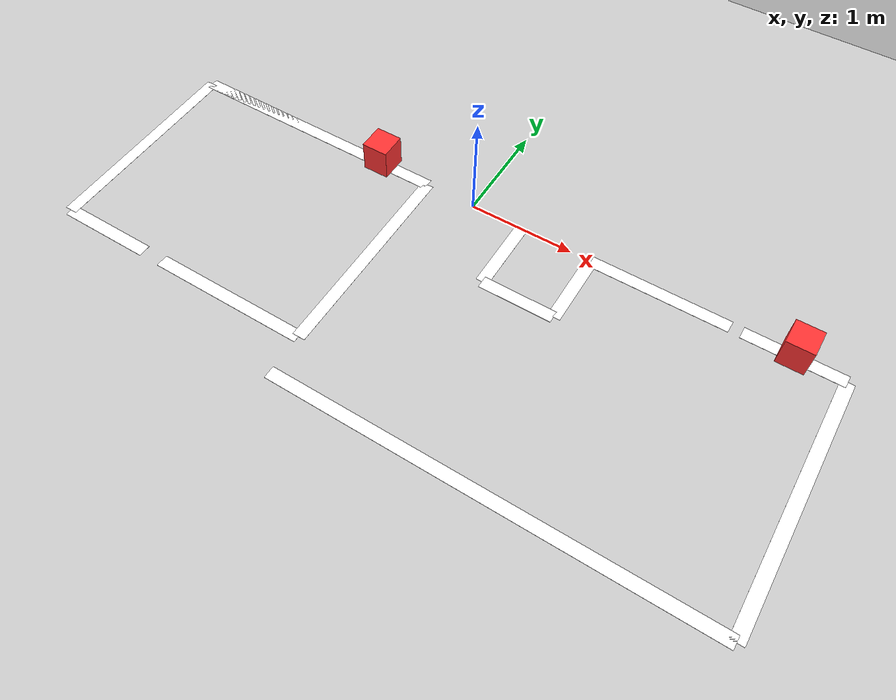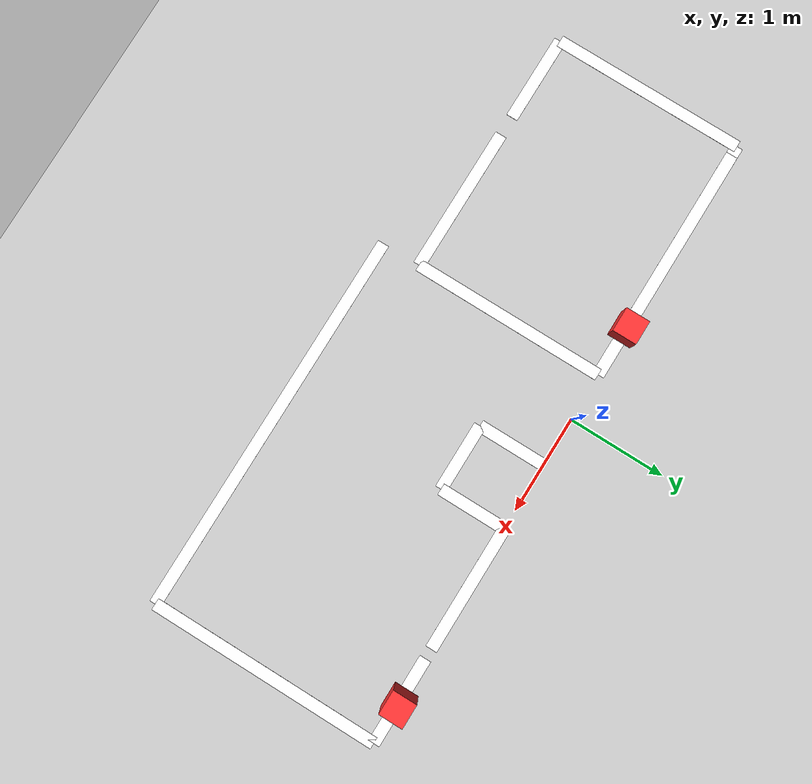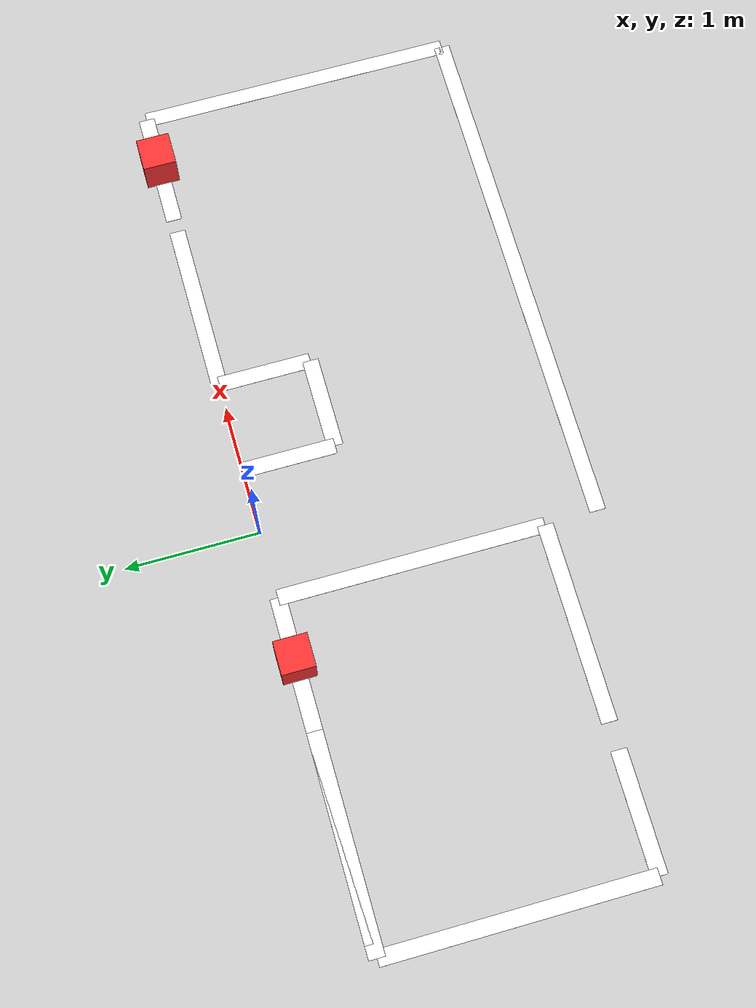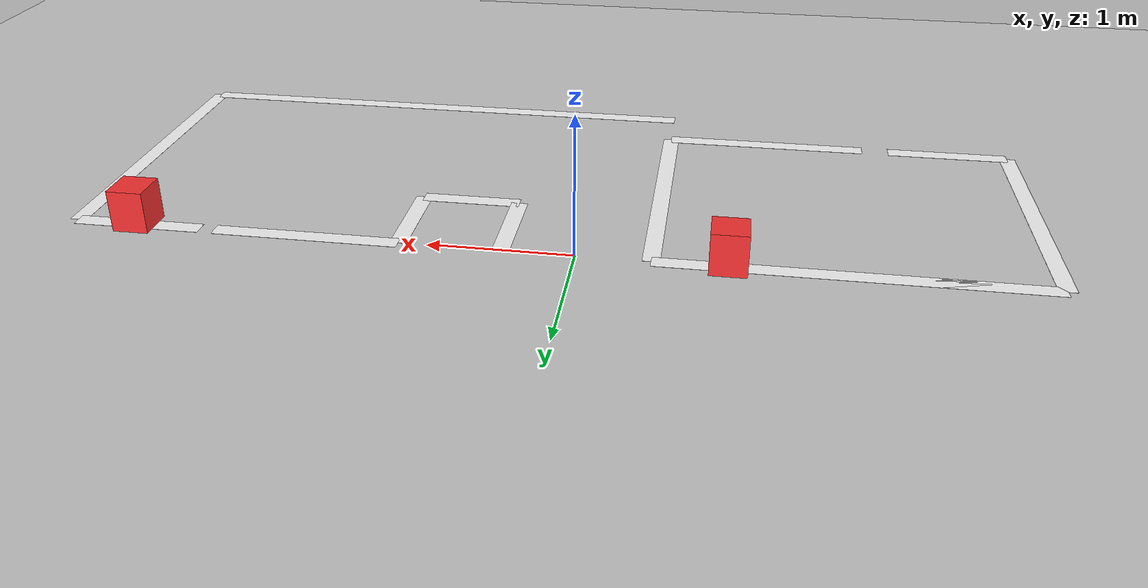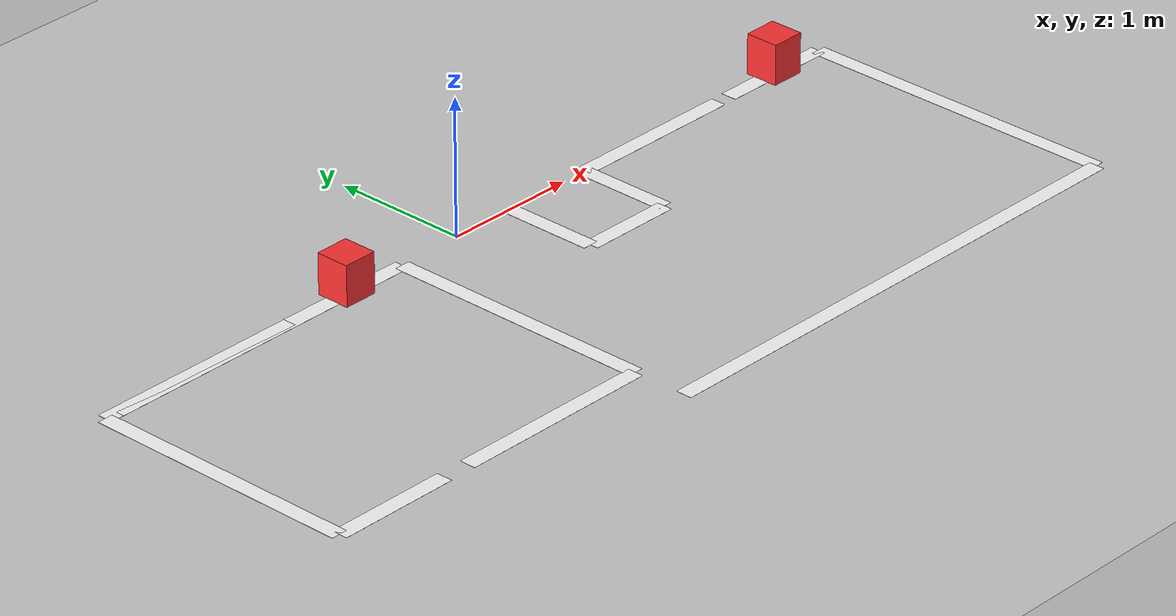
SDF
<?xml version="1.0"?>
<sdf version="1.6">
  <world name="complex_world">

    <include><uri>model://sun</uri></include>
    <include><uri>model://ground_plane</uri></include>
    <physics name="default" type="ode">
      <max_step_size>0.001</max_step_size>
      <real_time_factor>1</real_time_factor>
    </physics>

    <!-- SEGMENT 1: Start straight -->
    <model name="seg1"><static>true</static><pose>-1.75 0.0 0.001 0 0 0</pose>
      <link name="link">
        <visual name="v"><geometry><box><size>2.5 0.12 0.001</size></box></geometry>
          <material><ambient>1 1 1 1</ambient><diffuse>1 1 1 1</diffuse></material></visual>
        <collision name="c"><geometry><box><size>2.5 0.12 0.001</size></box></geometry></collision>
      </link></model>

    <!-- SEGMENT 2: Turn down at x=-0.5 -->
    <model name="seg2"><static>true</static><pose>-0.5 -1.0 0.001 0 0 1.5708</pose>
      <link name="link">
        <visual name="v"><geometry><box><size>2.0 0.12 0.001</size></box></geometry>
          <material><ambient>1 1 1 1</ambient><diffuse>1 1 1 1</diffuse></material></visual>
        <collision name="c"><geometry><box><size>2.0 0.12 0.001</size></box></geometry></collision>
      </link></model>

    <!-- SEGMENT 3a: Straight left, before gap 1 -->
    <model name="seg3a"><static>true</static><pose>-1.25 -2.0 0.001 0 0 0</pose>
      <link name="link">
        <visual name="v"><geometry><box><size>1.5 0.12 0.001</size></box></geometry>
          <material><ambient>1 1 1 1</ambient><diffuse>1 1 1 1</diffuse></material></visual>
        <collision name="c"><geometry><box><size>1.5 0.12 0.001</size></box></geometry></collision>
      </link></model>

    <!-- GAP 1: 0.3m gap from x=-2.0 to x=-2.3 -->

    <!-- SEGMENT 3b: After gap 1 -->
    <model name="seg3b"><static>true</static><pose>-2.65 -2.0 0.001 0 0 0</pose>
      <link name="link">
        <visual name="v"><geometry><box><size>0.9 0.12 0.001</size></box></geometry>
          <material><ambient>1 1 1 1</ambient><diffuse>1 1 1 1</diffuse></material></visual>
        <collision name="c"><geometry><box><size>0.9 0.12 0.001</size></box></geometry></collision>
      </link></model>

    <!-- SEGMENT 4: Turn up at x=-3.1 -->
    <model name="seg4"><static>true</static><pose>-3.1 -1.0 0.001 0 0 1.5708</pose>
      <link name="link">
        <visual name="v"><geometry><box><size>2.0 0.12 0.001</size></box></geometry>
          <material><ambient>1 1 1 1</ambient><diffuse>1 1 1 1</diffuse></material></visual>
        <collision name="c"><geometry><box><size>2.0 0.12 0.001</size></box></geometry></collision>
      </link></model>

    <!-- SEGMENT 5: Straight right back to centre -->
    <model name="seg5"><static>true</static><pose>-2.3 0.0 0.001 0 0 0</pose>
      <link name="link">
        <visual name="v"><geometry><box><size>1.6 0.12 0.001</size></box></geometry>
          <material><ambient>1 1 1 1</ambient><diffuse>1 1 1 1</diffuse></material></visual>
        <collision name="c"><geometry><box><size>1.6 0.12 0.001</size></box></geometry></collision>
      </link></model>

    <!-- SEGMENT 6: S-curve down -->
    <model name="seg6a"><static>true</static><pose>0.5 -0.35 0.001 0 0 1.5708</pose>
      <link name="link">
        <visual name="v"><geometry><box><size>0.7 0.12 0.001</size></box></geometry>
          <material><ambient>1 1 1 1</ambient><diffuse>1 1 1 1</diffuse></material></visual>
        <collision name="c"><geometry><box><size>0.7 0.12 0.001</size></box></geometry></collision>
      </link></model>

    <model name="seg6b"><static>true</static><pose>0.85 -0.7 0.001 0 0 0</pose>
      <link name="link">
        <visual name="v"><geometry><box><size>0.7 0.12 0.001</size></box></geometry>
          <material><ambient>1 1 1 1</ambient><diffuse>1 1 1 1</diffuse></material></visual>
        <collision name="c"><geometry><box><size>0.7 0.12 0.001</size></box></geometry></collision>
      </link></model>

    <model name="seg6c"><static>true</static><pose>1.2 -0.35 0.001 0 0 1.5708</pose>
      <link name="link">
        <visual name="v"><geometry><box><size>0.7 0.12 0.001</size></box></geometry>
          <material><ambient>1 1 1 1</ambient><diffuse>1 1 1 1</diffuse></material></visual>
        <collision name="c"><geometry><box><size>0.7 0.12 0.001</size></box></geometry></collision>
      </link></model>

    <!-- SEGMENT 7a: Straight right after S -->
    <model name="seg7a"><static>true</static><pose>1.85 0.0 0.001 0 0 0</pose>
      <link name="link">
        <visual name="v"><geometry><box><size>1.3 0.12 0.001</size></box></geometry>
          <material><ambient>1 1 1 1</ambient><diffuse>1 1 1 1</diffuse></material></visual>
        <collision name="c"><geometry><box><size>1.3 0.12 0.001</size></box></geometry></collision>
      </link></model>

    <!-- GAP 2: 0.3m gap from x=2.5 to x=2.8 -->

    <!-- SEGMENT 7b: After gap 2 -->
    <model name="seg7b"><static>true</static><pose>3.05 0.0 0.001 0 0 0</pose>
      <link name="link">
        <visual name="v"><geometry><box><size>0.9 0.12 0.001</size></box></geometry>
          <material><ambient>1 1 1 1</ambient><diffuse>1 1 1 1</diffuse></material></visual>
        <collision name="c"><geometry><box><size>0.9 0.12 0.001</size></box></geometry></collision>
      </link></model>

    <!-- SEGMENT 8: Turn down at x=3.5 -->
    <model name="seg8"><static>true</static><pose>3.5 -1.2 0.001 0 0 1.5708</pose>
      <link name="link">
        <visual name="v"><geometry><box><size>2.4 0.12 0.001</size></box></geometry>
          <material><ambient>1 1 1 1</ambient><diffuse>1 1 1 1</diffuse></material></visual>
        <collision name="c"><geometry><box><size>2.4 0.12 0.001</size></box></geometry></collision>
      </link></model>

    <!-- SEGMENT 9: Finish straight -->
    <model name="seg9"><static>true</static><pose>1.5 -2.4 0.001 0 0 0</pose>
      <link name="link">
        <visual name="v"><geometry><box><size>4.0 0.12 0.001</size></box></geometry>
          <material><ambient>1 1 1 1</ambient><diffuse>1 1 1 1</diffuse></material></visual>
        <collision name="c"><geometry><box><size>4.0 0.12 0.001</size></box></geometry></collision>
      </link></model>

    <!-- OBSTACLE 1 -->
    <model name="obstacle_1"><static>true</static><pose>-1.0 0.0 0.15 0 0 0</pose>
      <link name="link">
        <visual name="v"><geometry><box><size>0.25 0.25 0.3</size></box></geometry>
          <material><ambient>1 0.2 0.2 1</ambient><diffuse>1 0.2 0.2 1</diffuse></material></visual>
        <collision name="c"><geometry><box><size>0.25 0.25 0.3</size></box></geometry></collision>
      </link></model>

    <!-- OBSTACLE 2 -->
    <model name="obstacle_2"><static>true</static><pose>3.05 0.0 0.15 0 0 0</pose>
      <link name="link">
        <visual name="v"><geometry><box><size>0.25 0.25 0.3</size></box></geometry>
          <material><ambient>1 0.2 0.2 1</ambient><diffuse>1 0.2 0.2 1</diffuse></material></visual>
        <collision name="c"><geometry><box><size>0.25 0.25 0.3</size></box></geometry></collision>
      </link></model>

  </world>
</sdf>
